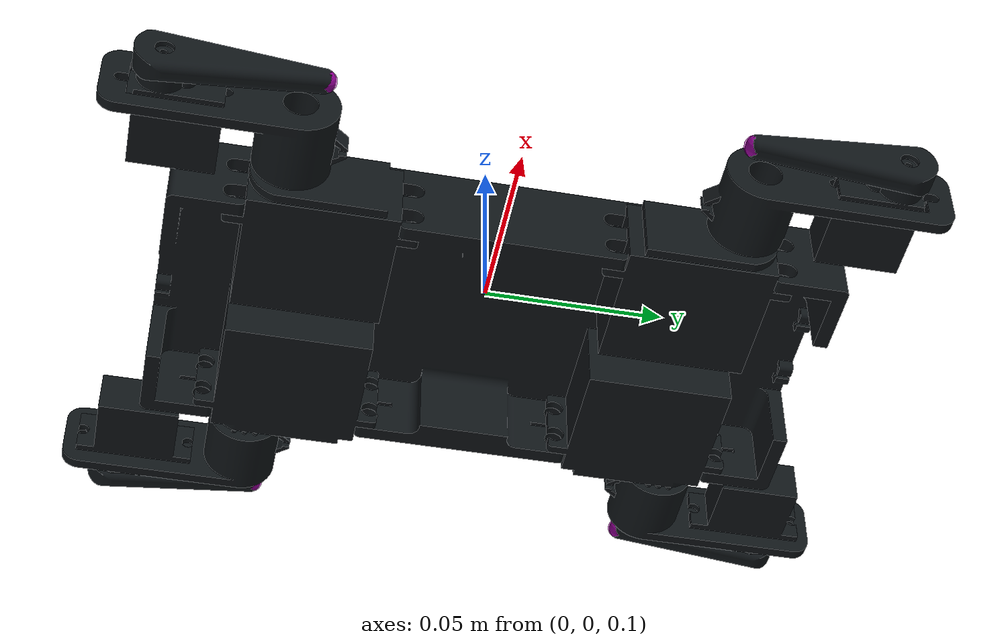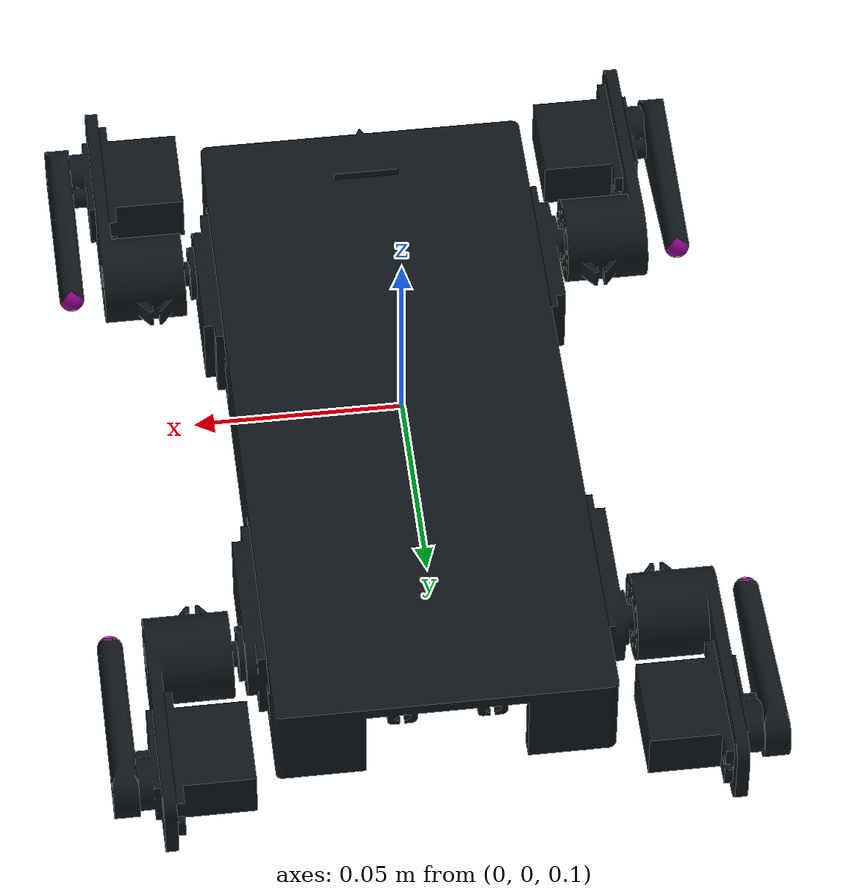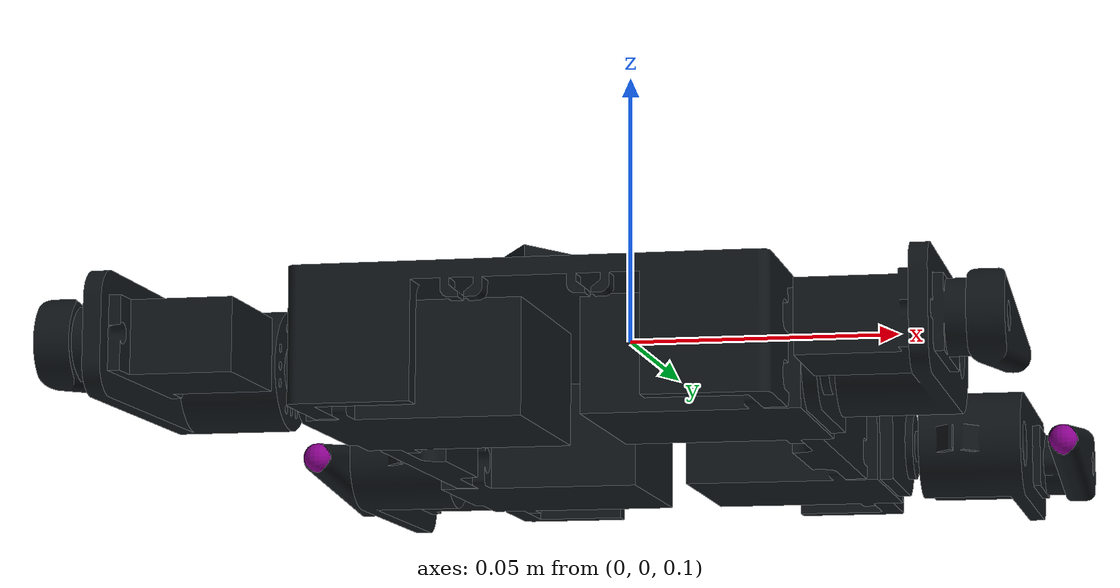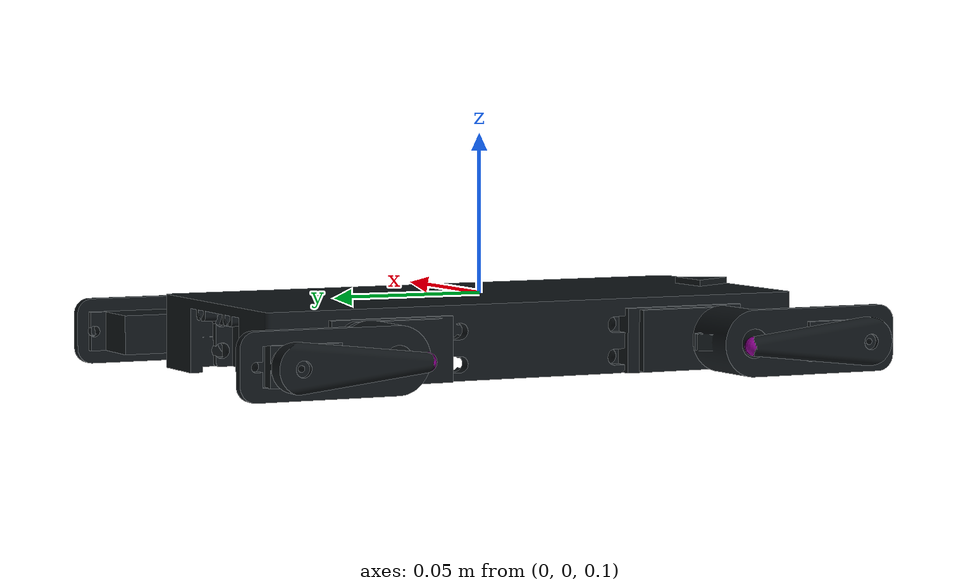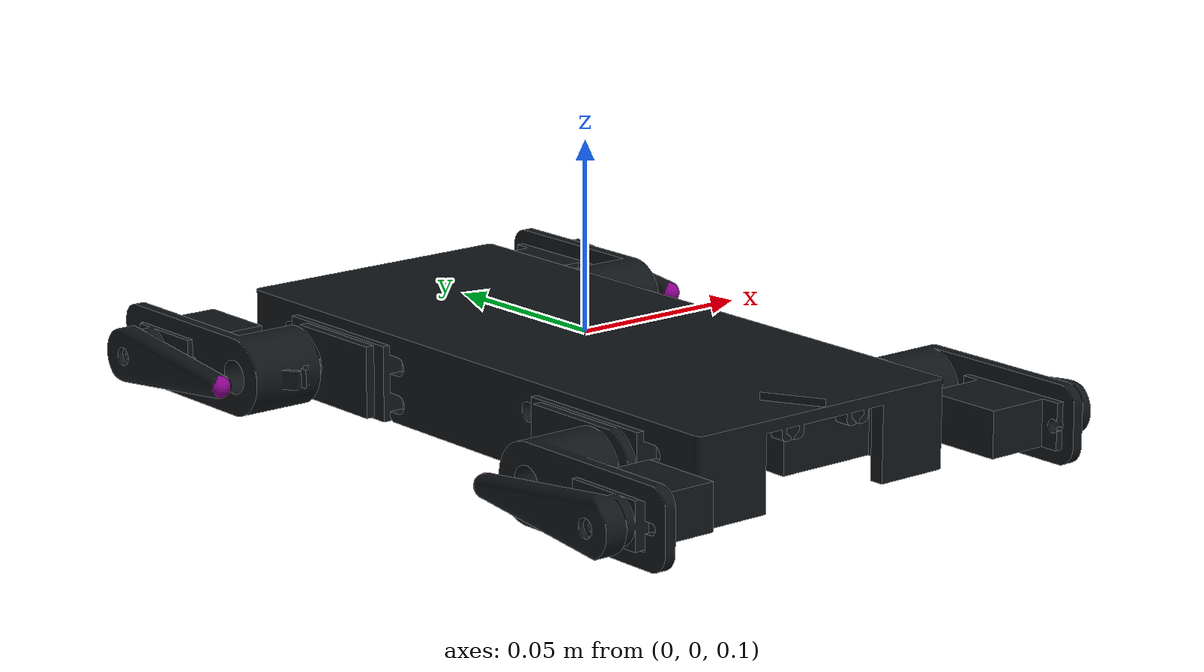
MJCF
<?xml version="1.0" encoding="utf-8"?>
<mujoco model="crank_bot">
  <compiler angle="radian" meshdir="assets" inertiafromgeom="true" autolimits="true"/>
  <option timestep="0.002" gravity="0 0 -9.81"/>
  <asset>
    <material name="visual_black" rgba="0.0615686 0.0811765 0.0929412 1"/>
    <mesh name="base_mesh" file="base2b.stl" scale="0.001 0.001 0.001" inertia="shell"/>
    <mesh name="mg995_mesh" file="MG995.stl" scale="0.001 0.001 0.001" inertia="shell"/>
    <mesh name="mg90_mesh" file="mg90.stl" scale="0.001 0.001 0.001" inertia="shell"/>
    <mesh name="leg1_mesh" file="leg1.stl" scale="0.001 0.001 0.001" inertia="shell"/>
    <mesh name="leg2_mesh" file="leg2.stl" scale="0.001 0.001 0.001" inertia="shell"/>
  </asset>
  <worldbody>
    <body name="root" pos="0 0 0.1" euler="0 3.14159 0">
        <freejoint name="root_freejoint"/>
        <body name="base" pos="0.0 0.0 0.0">
            <geom name="base" type="mesh" mesh="base_mesh" material="visual_black" contype="0" conaffinity="0" group="1" density="0" pos="0 0 0"/>
            <geom name="base_collision" type="box" size="0.04 0.09 0.005" pos="0 0 0.005" contype="1" conaffinity="1" group="3" rgba="1 0 0 0.35" mass="0.05"/>
            <!-- LEG FRONT LEFT   -->
            <body name="servo1" pos="0.015 -0.05 0.013" euler="0 -1.5708 1.5708">
                <geom name="front_left_shoulder_geom" type="mesh" mesh="mg995_mesh" material="visual_black" contype="0" conaffinity="0" group="1" density="0" pos="0.0 0.0 0.02"/>
                <geom name="front_left_shoulder_collision" type="sphere" size="0.005" pos="0.0 0.0 0.02" contype="1" conaffinity="1" group="3" rgba="1 0 0 0.35" mass="0.055"/>
                <body name="front_left_leg" pos="-0.01 -0.0 0.0825" euler="0 3.14159 0">
                    <joint name="front_left_shoulder_joint" type="hinge" pos="0 0 0" axis="0 0 1" limited="true" range="-180 0" damping="0.15" frictionloss="0.05" armature="0.0005"/>
                    <geom name="front_left_leg_geom" type="mesh" mesh="leg1_mesh" material="visual_black" contype="0" conaffinity="0" group="1" density="0" pos="0.0075 0.0 0.0"/>
                    <geom name="front_left_leg_collision" type="capsule" size="0.01 0.022" pos="0.02 0.0 0.01" euler="0 1.5708 0" contype="1" conaffinity="1" group="3" rgba="1 0 0 0.35" mass="0.005"/>
                    <body name="front_left_knee" pos="0.03 0.0 0.022" euler="0 3.14159 1.5708">
                        <geom name="front_left_eblow_servo_geom" type="mesh" mesh="mg90_mesh" material="visual_black" contype="0" conaffinity="0" group="1" density="0" pos="0.0 0.0 0.0"/>
                        <geom name="front_left_elbow_servo_collision" type="sphere" size="0.005" pos="0.0 0.0 0.0" contype="1" conaffinity="1" group="3" rgba="1 0 0 0.35" mass="0.0134"/>
                        <body name="front_left_lower_leg" pos="0.00 0.005 0.027" euler="0 0 0">
                            <joint name="front_left_elbow_joint" type="hinge" pos="0.0 0.0 0.0" axis="0 0 1" limited="true" range="-180 0" damping="0.08" frictionloss="0.02" armature="0.0002"/>
                            <geom name="front_left_lower_leg_geom" type="mesh" mesh="leg2_mesh" material="visual_black" contype="0" conaffinity="0" group="1" density="0" pos="0.0 0.0 0.0"/>
                            <geom name="front_left_lower_leg_collision" type="capsule" size="0.0035 0.022" pos="0.0 -0.017 0.003" euler="1.5708 0 0" contype="1" conaffinity="1" group="3" rgba="1 0 0 0.35" mass="0.005"/>
                            <geom name="front_left_lower_leg_foot" type="sphere" size="0.003" pos="0.0 -0.04 0.003" contype="1" conaffinity="1" group="1" rgba="1 0 1 0.55" mass="0.0"/>
                        </body>
                    </body>
                </body>
            </body>
            <!-- LEG FRONT RIGHT   -->
            <body name="servo2" pos="-0.015 -0.05 0.013" euler="0 1.5708 1.5708">
                <geom name="front_right_shoulder_geom" type="mesh" mesh="mg995_mesh" material="visual_black" contype="0" conaffinity="0" group="1" density="0" pos="0.0 0.0 0.02"/>
                <geom name="front_right_shoulder_collision" type="sphere" size="0.005" pos="0.0 0.0 0.02" contype="1" conaffinity="1" group="3" rgba="1 0 0 0.35" mass="0.055"/>
                <body name="front_right_leg" pos="-0.01 -0.0 0.0825" euler="0 3.14159 0">
                    <joint name="front_right_shoulder_joint" type="hinge" pos="0 0 0" axis="0 0 1" limited="true" range="0 180" damping="0.15" frictionloss="0.05" armature="0.0005"/>
                    <geom name="front_right_leg_geom" type="mesh" mesh="leg1_mesh" material="visual_black" contype="0" conaffinity="0" group="1" density="0" pos="0.0075 0.0 0.0"/>
                    <geom name="front_right_leg_collision" type="capsule" size="0.01 0.022" pos="0.02 0.0 0.01" euler="0 1.5708 0" group="3" rgba="1 0 0 0.35" contype="1" conaffinity="1" mass="0.005"/>

                    <body name="front_right_knee" pos="0.03 0.0 0.022" euler="0 3.14159 1.5708">
                        <geom name="front_right_eblow_servo_geom" type="mesh" mesh="mg90_mesh" material="visual_black" contype="0" conaffinity="0" group="1" density="0" pos="0.0 0.0 0.0"/>
                        <geom name="front_right_elbow_servo_collision" type="sphere" size="0.005" pos="0.0 0.0 0.0" contype="1" conaffinity="1" group="3" rgba="1 0 0 0.35" mass="0.0134"/>

                        <body name="front_right_lower_leg" pos="0.00 0.005 0.027" euler="0 0 0">
                            <joint name="front_right_elbow_joint" type="hinge" pos="0.0 0.0 0.0" axis="0 0 1" limited="true" range="0 180" damping="0.08" frictionloss="0.02" armature="0.0002"/>
                            <geom name="front_right_lower_leg_geom" type="mesh" mesh="leg2_mesh" material="visual_black" contype="0" conaffinity="0" group="1" density="0" pos="0.0 0.0 0.0"/>
                            <geom name="front_right_lower_leg_collision" type="capsule" size="0.0035 0.022" pos="0.0 -0.017 0.003" euler="1.5708 0 0" contype="1" conaffinity="1" group="3" rgba="1 0 0 0.35" mass="0.005"/>
                            <geom name="front_right_lower_leg_foot" type="sphere" size="0.003" pos="0.0 -0.04 0.003" contype="1" conaffinity="1" group="1" rgba="1 0 1 0.55" mass="0.0"/>
                        </body>
                    </body>
                </body>
            </body>
            <!-- LEG BACK LEFT   -->
             <body name="servo3" pos="0.015 0.05 0.013" euler="0 -1.5708 -1.5708">
                <geom name="back_left_shoulder_geom" type="mesh" mesh="mg995_mesh" material="visual_black" contype="0" conaffinity="0" group="1" density="0" pos="0.0 0.0 0.02"/>
                <geom name="back_left_shoulder_collision" type="sphere" size="0.005" pos="0.0 0.0 0.02" contype="1" conaffinity="1" group="3" rgba="1 0 0 0.35" mass="0.055"/>
                <body name="back_left_leg" pos="-0.01 -0.0 0.0825" euler="0 3.14159 0">
                    <joint name="back_left_shoulder_joint" type="hinge" pos="0 0 0" axis="0 0 1" limited="true" range="0 180" damping="0.15" frictionloss="0.05" armature="0.0005"/>
                    <geom name="back_left_leg_geom" type="mesh" mesh="leg1_mesh" material="visual_black" contype="0" conaffinity="0" group="1" density="0" pos="0.0075 0.0 0.0"/>
                    <geom name="back_left_leg_collision" type="capsule" size="0.01 0.022" pos="0.02 0.0 0.01" euler="0 1.5708 0" contype="1" conaffinity="1" group="3" rgba="1 0 0 0.35" mass="0.005"/>

                    <body name="back_left_knee" pos="0.03 0.0 0.022" euler="0 3.14159 1.5708">
                        <geom name="back_left_eblow_servo_geom" type="mesh" mesh="mg90_mesh" material="visual_black" contype="0" conaffinity="0" group="1" density="0" pos="0.0 0.0 0.0"/>
                        <geom name="back_left_elbow_servo_collision" type="sphere" size="0.005" pos="0.0 0.0 0.0" contype="1" conaffinity="1" group="3" rgba="1 0 0 0.35" mass="0.0134"/>
                        <body name="back_left_lower_leg" pos="0.00 0.005 0.027" euler="0 0 0">
                            <joint name="back_left_elbow_joint" type="hinge" pos="0.0 0.0 0.0" axis="0 0 1" limited="true" range="-180 0" damping="0.08" frictionloss="0.02" armature="0.0002"/>
                            <geom name="back_left_lower_leg_geom" type="mesh" mesh="leg2_mesh" material="visual_black" contype="0" conaffinity="0" group="1" density="0" pos="0.0 0.0 0.0"/>
                            <geom name="back_left_lower_leg_collision" type="capsule" size="0.0035 0.022" pos="0.0 -0.017 0.003" euler="1.5708 0 0" contype="1" conaffinity="1" group="3" rgba="1 0 0 0.35" mass="0.005"/>
                            <geom name="back_left_lower_leg_foot" type="sphere" size="0.003" pos="0.0 -0.04 0.003" contype="1" conaffinity="1" group="1" rgba="1 0 1 0.55" mass="0.0"/>
                        </body>
                    </body>
                </body>
            </body>
            <!-- LEG BACK RIGHT   -->
            <body name="servo4" pos="-0.015 0.05 0.013" euler="0 1.5708 -1.5708">
                <geom name="back_right_shoulder_geom" type="mesh" mesh="mg995_mesh" material="visual_black" contype="0" conaffinity="0" group="1" density="0" pos="0.0 0.0 0.02"/>
                <geom name="back_right_shoulder_collision" type="sphere" size="0.005" pos="0.0 0.0 0.02" contype="1" conaffinity="1" group="3" rgba="1 0 0 0.35" mass="0.055"/>
                <body name="back_right_leg" pos="-0.01 -0.0 0.0825" euler="0 3.14159 0">
                    <joint name="back_right_shoulder_joint" type="hinge" pos="0 0 0" axis="0 0 1" limited="true" range="-180 0" damping="0.15" frictionloss="0.05" armature="0.0005"/>
                    <geom name="back_right_leg_geom" type="mesh" mesh="leg1_mesh" material="visual_black" contype="0" conaffinity="0" group="1" density="0" pos="0.0075 0.0 0.0"/>
                    <geom name="back_right_leg_collision" type="capsule" size="0.01 0.022" pos="0.02 0.0 0.01" euler="0 1.5708 0" contype="1" conaffinity="1" group="3" rgba="1 0 0 0.35" mass="0.005"/>

                    <body name="back_right_knee" pos="0.03 0.0 0.022" euler="0 3.14159 1.5708">
                        <geom name="back_right_eblow_servo_geom" type="mesh" mesh="mg90_mesh" material="visual_black" contype="0" conaffinity="0" group="1" density="0" pos="0 0 0"/>
                        <geom name="back_right_elbow_servo_collision" type="sphere" size="0.005" pos="0 0 0" contype="1" conaffinity="1" group="3" rgba="1 0 0 0.35" mass="0.0134"/>
                        <body name="back_right_lower_leg" pos="0.00 0.005 0.027" euler="0 0 0">
                            <joint name="back_right_elbow_joint" type="hinge" pos="0.0 0.0 0.0" axis="0 0 1" limited="true" range="0 180" damping="0.08" frictionloss="0.02" armature="0.0002"/>
                            <geom name="back_right_lower_leg_geom" type="mesh" mesh="leg2_mesh" material="visual_black" contype="0" conaffinity="0" group="1" density="0" pos="0.0 0.0 0.0"/>
                            <geom name="back_right_lower_leg_collision" type="capsule" size="0.0035 0.022" pos="0.0 -0.017 0.003" euler="1.5708 0 0" contype="1" conaffinity="1" group="3" rgba="1 0 0 0.35" mass="0.005"/>
                            <geom name="back_right_lower_leg_foot" type="sphere" size="0.003" pos="0.0 -0.04 0.003" contype="1" conaffinity="1" group="1" rgba="1 0 1 0.55" mass="0.0"/>
                        </body>
                    </body>
                </body>
            </body>
        </body>
    </body>
</worldbody>

<contact>
    <exclude body1="servo1" body2="front_left_leg"/>
    <exclude body1="front_left_leg" body2="front_left_knee"/>
    <exclude body1="front_left_knee" body2="front_left_lower_leg"/>
    <exclude body1="servo2" body2="front_right_leg"/>
    <exclude body1="front_right_leg" body2="front_right_knee"/>
    <exclude body1="front_right_knee" body2="front_right_lower_leg"/>
    <exclude body1="servo3" body2="back_left_leg"/>
    <exclude body1="back_left_leg" body2="back_left_knee"/>
    <exclude body1="back_left_knee" body2="back_left_lower_leg"/>
    <exclude body1="servo4" body2="back_right_leg"/>
    <exclude body1="back_right_leg" body2="back_right_knee"/>
    <exclude body1="back_right_knee" body2="back_right_lower_leg"/>
</contact>

<actuator>
    <position name="front_left_shoulder_pos" joint="front_left_shoulder_joint" kp="8" kv="0.4" ctrlrange="-3.14159 0.0" forcerange="-1.2 1.2"/>
    <position name="front_left_elbow_pos" joint="front_left_elbow_joint" kp="3" kv="0.15" ctrlrange="-3.14159 0.0" forcerange="-0.25 0.25"/>
    <position name="front_right_shoulder_pos" joint="front_right_shoulder_joint" kp="8" kv="0.4" ctrlrange="0.0 3.14159" forcerange="-1.2 1.2"/>
    <position name="front_right_elbow_pos" joint="front_right_elbow_joint" kp="3" kv="0.15" ctrlrange="0.0 3.14159" forcerange="-0.25 0.25"/>
    <position name="back_left_shoulder_pos" joint="back_left_shoulder_joint" kp="8" kv="0.4" ctrlrange="0.0 3.14159" forcerange="-1.2 1.2"/>
    <position name="back_left_elbow_pos" joint="back_left_elbow_joint" kp="3" kv="0.15" ctrlrange="-3.14159 0.0" forcerange="-0.25 0.25"/>
    <position name="back_right_shoulder_pos" joint="back_right_shoulder_joint" kp="8" kv="0.4" ctrlrange="-3.14159 0.0" forcerange="-1.2 1.2"/>
    <position name="back_right_elbow_pos" joint="back_right_elbow_joint" kp="3" kv="0.15" ctrlrange="0.0 3.14159" forcerange="-0.25 0.25"/>
</actuator>

</mujoco>
